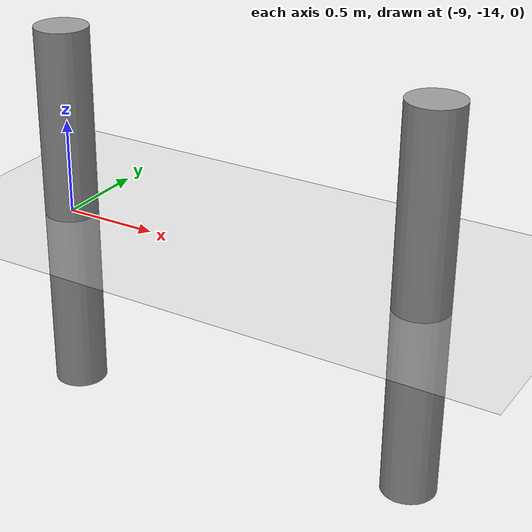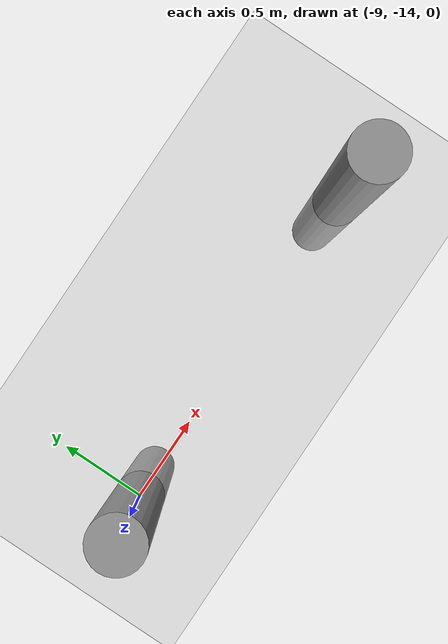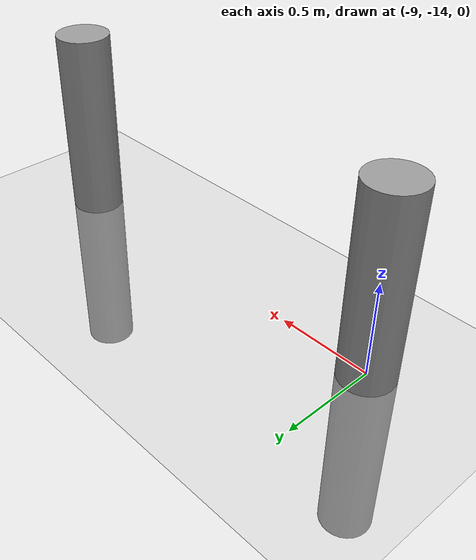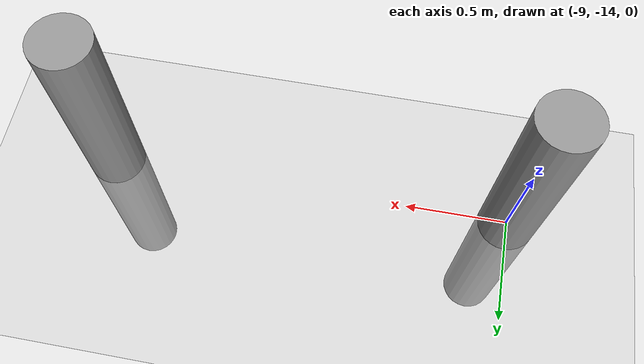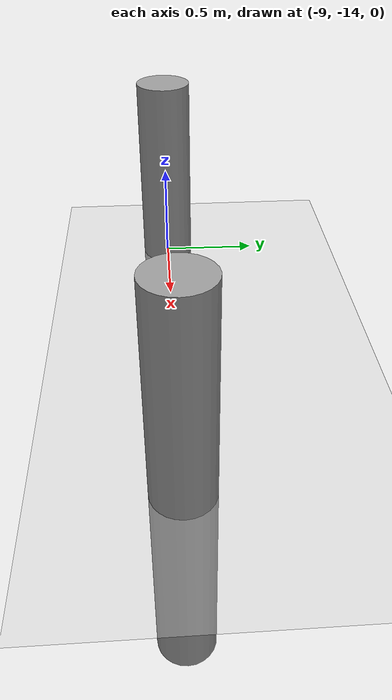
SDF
<sdf version="1.6">
 <world name="default">
  <model name="ground_plane">
   <static>1</static>
   <link name="link">
    <collision name="collision">
     <geometry><plane><normal>0 0 1</normal><size>100 100</size></plane></geometry>
     <surface><friction><ode><mu>100</mu><mu2>50</mu2></ode></friction></surface>
    </collision>
    <visual name="visual">
     <cast_shadows>0</cast_shadows>
     <geometry><plane><normal>0 0 1</normal><size>100 100</size></plane></geometry>
     <material>
      <script><uri>file://media/materials/scripts/gazebo.material</uri><name>Gazebo/Grey</name></script>
     </material>
    </visual>
   </link>
  </model>
  <model name="my_cylinder014_clone_4">
   <pose>-7 -14 0 0 -0 0</pose>
   <link name="my_cylinder014::link">
    <inertial>
     <mass>1</mass>
     <inertia><ixx>0.145833</ixx><ixy>0</ixy><ixz>0</ixz><iyy>0.145833</iyy><iyz>0</iyz><izz>0.125</izz></inertia>
    </inertial>
    <visual name="visual">
     <geometry><cylinder><radius>0.14</radius><length>2</length></cylinder></geometry>
     <material>
      <script><name>Gazebo/Grey</name><uri>file://media/materials/scripts/gazebo.material</uri></script>
      <ambient>0.3 0.3 0.3 1</ambient>
      <diffuse>0.7 0.7 0.7 1</diffuse>
      <specular>1 0.01 0.01 1</specular>
      <emissive>0 0 0 1</emissive>
      <shader type="vertex"><normal_map>__default__</normal_map></shader>
     </material>
    </visual>
    <collision name="collision">
     <geometry><cylinder><radius>0.14</radius><length>2</length></cylinder></geometry>
     <surface>
      <friction>
       <ode><mu>1</mu><mu2>1</mu2><fdir1>0 0 0</fdir1><slip1>0</slip1><slip2>0</slip2></ode>
       <torsional>
        <coefficient>1</coefficient>
        <patch_radius>0</patch_radius>
        <surface_radius>0</surface_radius>
        <use_patch_radius>1</use_patch_radius>
        <ode><slip>0</slip></ode>
       </torsional>
      </friction>
      <bounce><restitution_coefficient>0</restitution_coefficient><threshold>1e+06</threshold></bounce>
      <contact>
       <collide_without_contact>0</collide_without_contact>
       <collide_without_contact_bitmask>1</collide_without_contact_bitmask>
       <collide_bitmask>1</collide_bitmask>
       <ode>
        <soft_cfm>0</soft_cfm>
        <soft_erp>0.2</soft_erp>
        <kp>1e+13</kp>
        <kd>1</kd>
        <max_vel>0.01</max_vel>
        <min_depth>0</min_depth>
       </ode>
       <bullet>
        <split_impulse>1</split_impulse>
        <split_impulse_penetration_threshold>-0.01</split_impulse_penetration_threshold>
        <soft_cfm>0</soft_cfm>
        <soft_erp>0.2</soft_erp>
        <kp>1e+13</kp>
        <kd>1</kd>
       </bullet>
      </contact>
     </surface>
    </collision>
   </link>
   <static>1</static>
  </model>
  <model name="my_cylinder014_clone_3">
   <pose>-9 -14 0 0 -0 0</pose>
   <link name="my_cylinder014::link">
    <inertial>
     <mass>1</mass>
     <inertia><ixx>0.145833</ixx><ixy>0</ixy><ixz>0</ixz><iyy>0.145833</iyy><iyz>0</iyz><izz>0.125</izz></inertia>
    </inertial>
    <visual name="visual">
     <geometry><cylinder><radius>0.14</radius><length>2</length></cylinder></geometry>
     <material>
      <script><name>Gazebo/Grey</name><uri>file://media/materials/scripts/gazebo.material</uri></script>
      <ambient>0.3 0.3 0.3 1</ambient>
      <diffuse>0.7 0.7 0.7 1</diffuse>
      <specular>1 0.01 0.01 1</specular>
      <emissive>0 0 0 1</emissive>
      <shader type="vertex"><normal_map>__default__</normal_map></shader>
     </material>
    </visual>
    <collision name="collision">
     <geometry><cylinder><radius>0.14</radius><length>2</length></cylinder></geometry>
     <surface>
      <friction>
       <ode><mu>1</mu><mu2>1</mu2><fdir1>0 0 0</fdir1><slip1>0</slip1><slip2>0</slip2></ode>
       <torsional>
        <coefficient>1</coefficient>
        <patch_radius>0</patch_radius>
        <surface_radius>0</surface_radius>
        <use_patch_radius>1</use_patch_radius>
        <ode><slip>0</slip></ode>
       </torsional>
      </friction>
      <bounce><restitution_coefficient>0</restitution_coefficient><threshold>1e+06</threshold></bounce>
      <contact>
       <collide_without_contact>0</collide_without_contact>
       <collide_without_contact_bitmask>1</collide_without_contact_bitmask>
       <collide_bitmask>1</collide_bitmask>
       <ode>
        <soft_cfm>0</soft_cfm>
        <soft_erp>0.2</soft_erp>
        <kp>1e+13</kp>
        <kd>1</kd>
        <max_vel>0.01</max_vel>
        <min_depth>0</min_depth>
       </ode>
       <bullet>
        <split_impulse>1</split_impulse>
        <split_impulse_penetration_threshold>-0.01</split_impulse_penetration_threshold>
        <soft_cfm>0</soft_cfm>
        <soft_erp>0.2</soft_erp>
        <kp>1e+13</kp>
        <kd>1</kd>
       </bullet>
      </contact>
     </surface>
    </collision>
   </link>
   <static>1</static>
  </model>
  <model name="my_cylinder014_clone_3">
   <pose>-9 -14 0 0 -0 0</pose>
   <link name="my_cylinder014::link">
    <inertial>
     <mass>1</mass>
     <inertia><ixx>0.145833</ixx><ixy>0</ixy><ixz>0</ixz><iyy>0.145833</iyy><iyz>0</iyz><izz>0.125</izz></inertia>
    </inertial>
    <visual name="visual">
     <geometry><cylinder><radius>0.14</radius><length>2</length></cylinder></geometry>
     <material>
      <script><name>Gazebo/Grey</name><uri>file://media/materials/scripts/gazebo.material</uri></script>
      <ambient>0.3 0.3 0.3 1</ambient>
      <diffuse>0.7 0.7 0.7 1</diffuse>
      <specular>1 0.01 0.01 1</specular>
      <emissive>0 0 0 1</emissive>
      <shader type="vertex"><normal_map>__default__</normal_map></shader>
     </material>
    </visual>
    <collision name="collision">
     <geometry><cylinder><radius>0.14</radius><length>2</length></cylinder></geometry>
     <surface>
      <friction>
       <ode><mu>1</mu><mu2>1</mu2><fdir1>0 0 0</fdir1><slip1>0</slip1><slip2>0</slip2></ode>
       <torsional>
        <coefficient>1</coefficient>
        <patch_radius>0</patch_radius>
        <surface_radius>0</surface_radius>
        <use_patch_radius>1</use_patch_radius>
        <ode><slip>0</slip></ode>
       </torsional>
      </friction>
      <bounce><restitution_coefficient>0</restitution_coefficient><threshold>1e+06</threshold></bounce>
      <contact>
       <collide_without_contact>0</collide_without_contact>
       <collide_without_contact_bitmask>1</collide_without_contact_bitmask>
       <collide_bitmask>1</collide_bitmask>
       <ode>
        <soft_cfm>0</soft_cfm>
        <soft_erp>0.2</soft_erp>
        <kp>1e+13</kp>
        <kd>1</kd>
        <max_vel>0.01</max_vel>
        <min_depth>0</min_depth>
       </ode>
       <bullet>
        <split_impulse>1</split_impulse>
        <split_impulse_penetration_threshold>-0.01</split_impulse_penetration_threshold>
        <soft_cfm>0</soft_cfm>
        <soft_erp>0.2</soft_erp>
        <kp>1e+13</kp>
        <kd>1</kd>
       </bullet>
      </contact>
     </surface>
    </collision>
   </link>
   <static>1</static>
  </model>
 </world>
</sdf>
